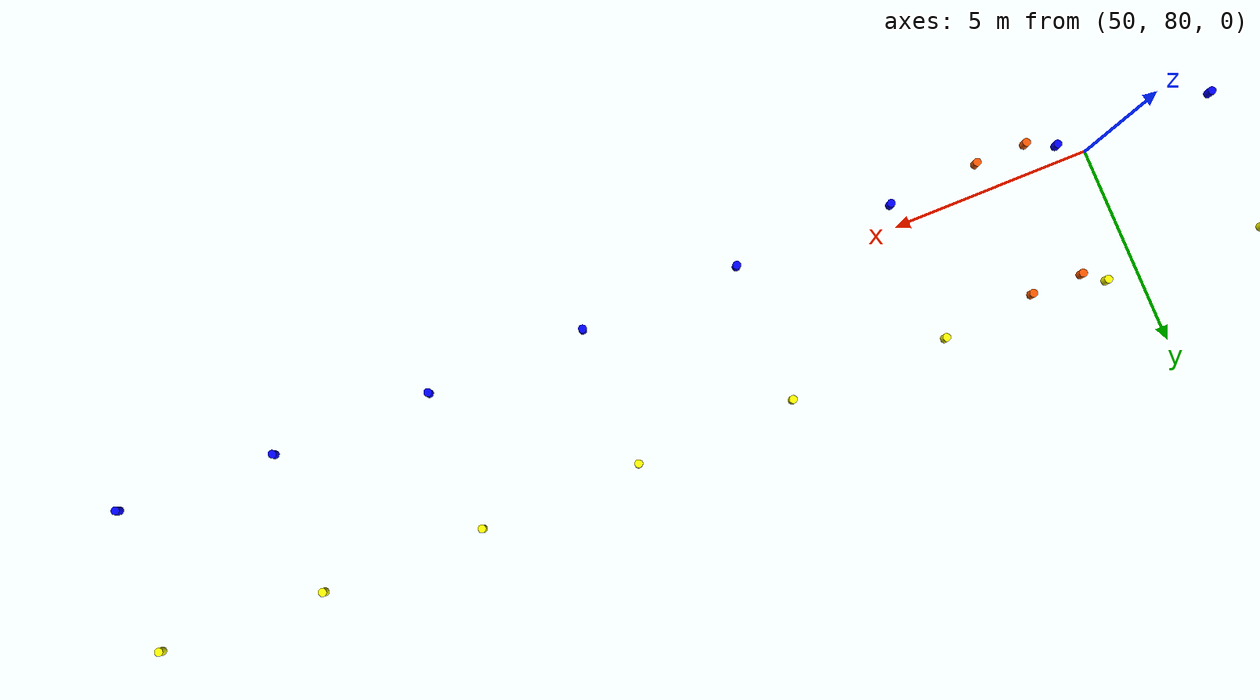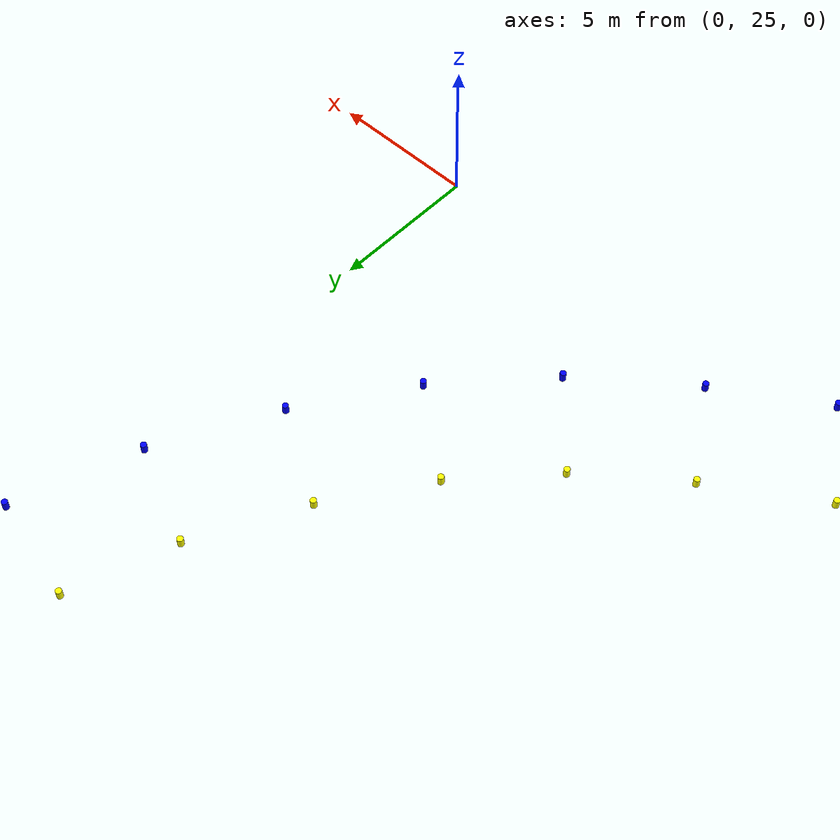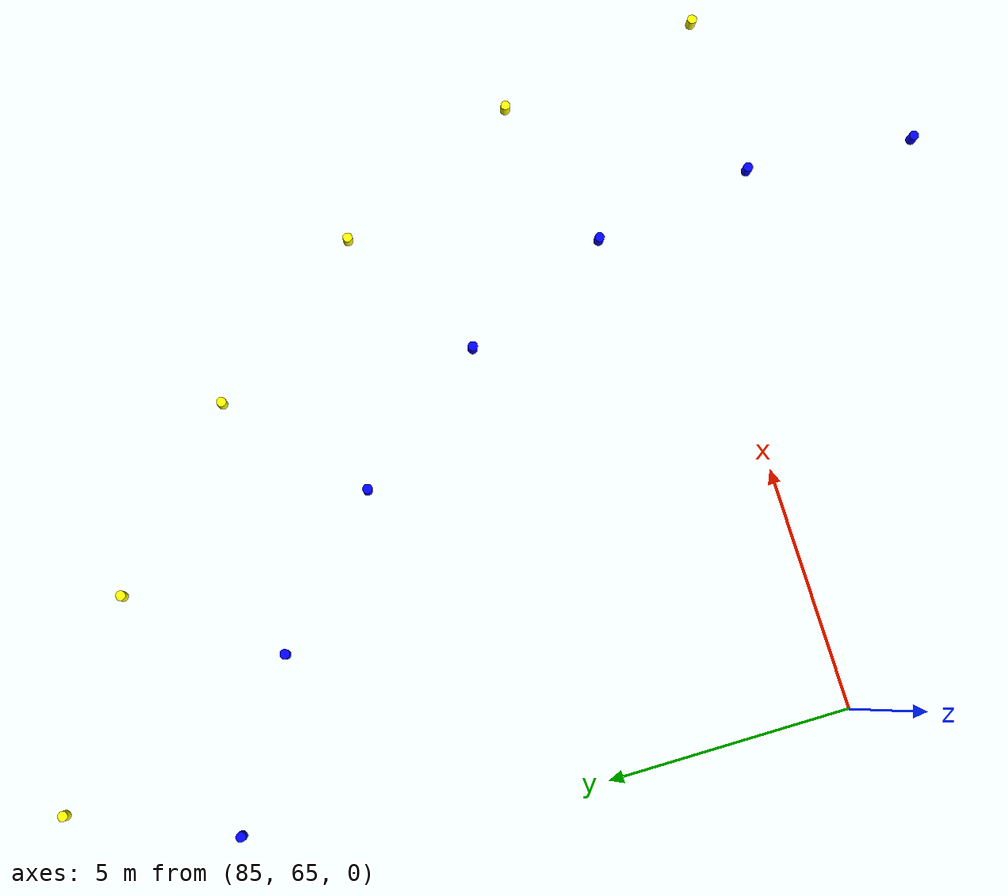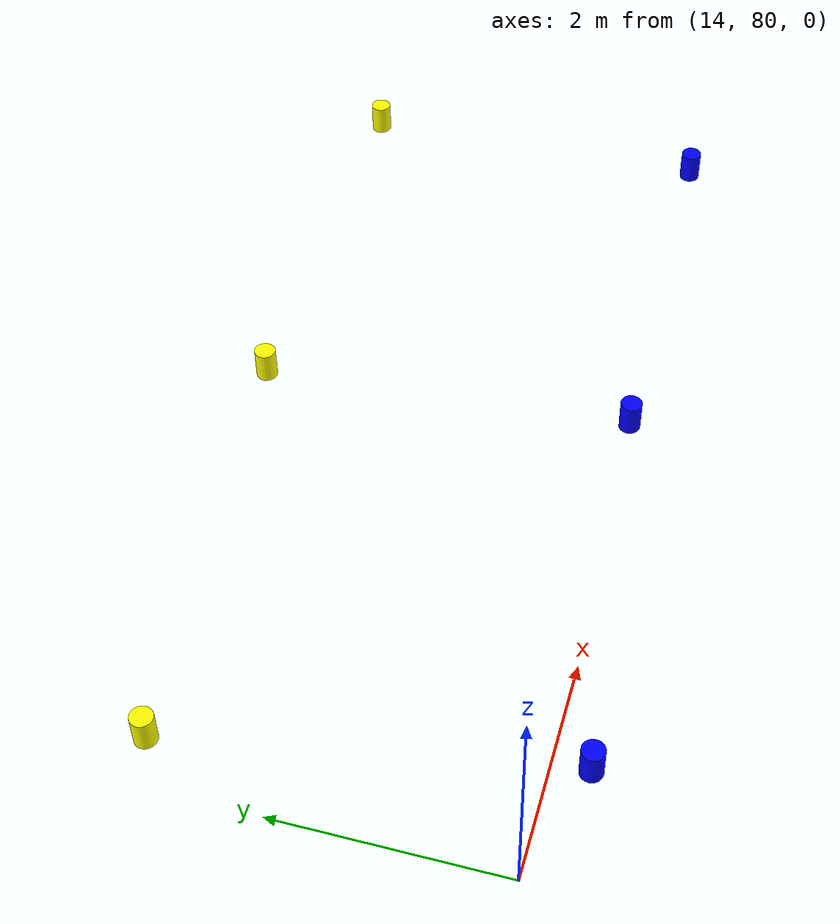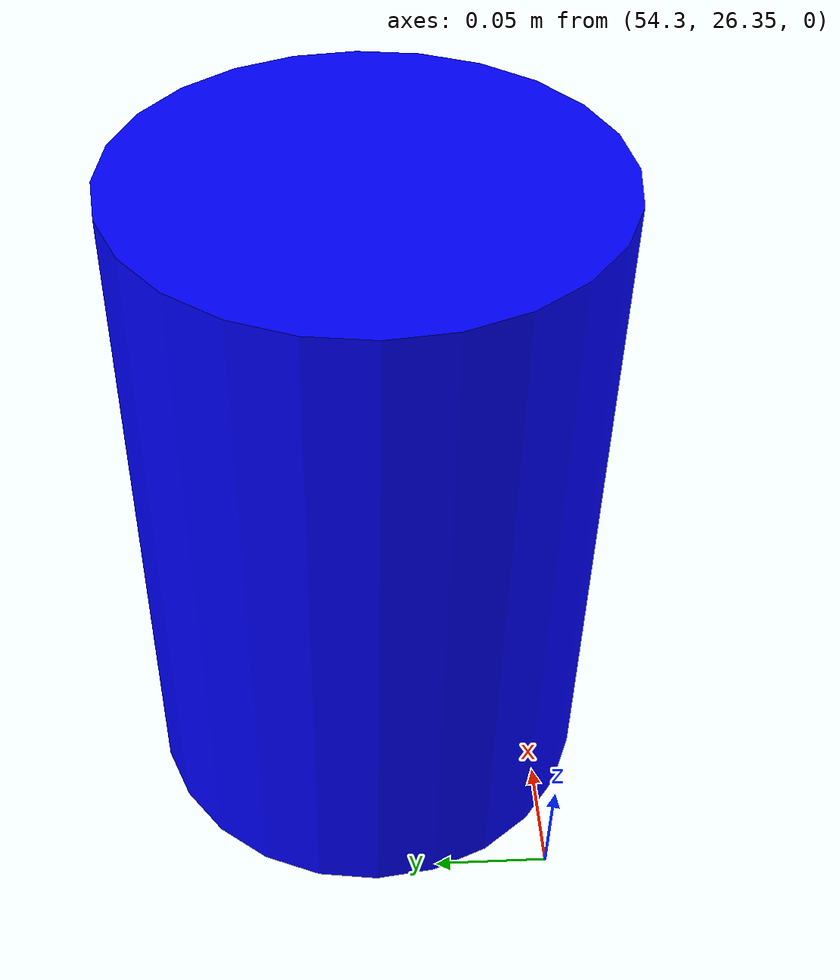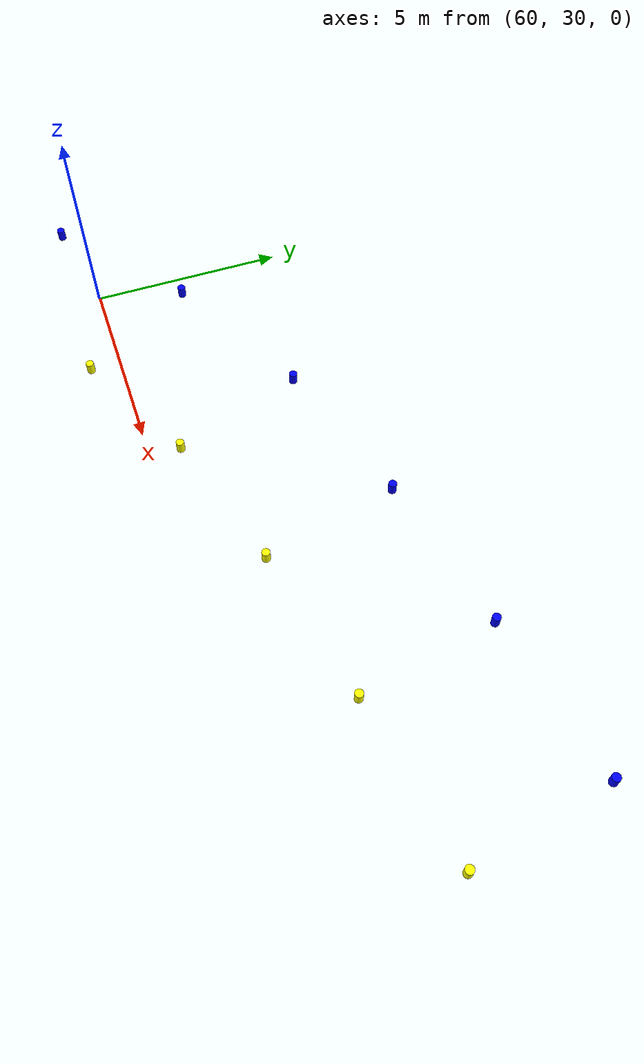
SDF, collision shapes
<?xml version="1.0"?>
<sdf version="1.7">
  <model name="track_competitionmap1">
    <static>true</static>

    <include>
      <uri>model://cone_yellow</uri>
      <name>cone_yellow_001</name>
      <pose>54.975 82.950 0.000 0 0 0.000</pose>
    </include>
    <include>
      <uri>model://cone_yellow</uri>
      <name>cone_yellow_002</name>
      <pose>58.953 82.943 0.000 0 0 0.000</pose>
    </include>
    <include>
      <uri>model://cone_yellow</uri>
      <name>cone_yellow_003</name>
      <pose>62.949 82.978 0.000 0 0 0.000</pose>
    </include>
    <include>
      <uri>model://cone_yellow</uri>
      <name>cone_yellow_004</name>
      <pose>66.966 83.012 0.000 0 0 0.000</pose>
    </include>
    <include>
      <uri>model://cone_yellow</uri>
      <name>cone_yellow_005</name>
      <pose>71.007 82.989 0.000 0 0 0.000</pose>
    </include>
    <include>
      <uri>model://cone_yellow</uri>
      <name>cone_yellow_006</name>
      <pose>75.078 82.841 0.000 0 0 0.000</pose>
    </include>
    <include>
      <uri>model://cone_yellow</uri>
      <name>cone_yellow_007</name>
      <pose>79.177 82.471 0.000 0 0 0.000</pose>
    </include>
    <include>
      <uri>model://cone_yellow</uri>
      <name>cone_yellow_008</name>
      <pose>83.287 81.739 0.000 0 0 0.000</pose>
    </include>
    <include>
      <uri>model://cone_yellow</uri>
      <name>cone_yellow_009</name>
      <pose>87.359 80.438 0.000 0 0 0.000</pose>
    </include>
    <include>
      <uri>model://cone_yellow</uri>
      <name>cone_yellow_010</name>
      <pose>91.196 78.326 0.000 0 0 0.000</pose>
    </include>
    <include>
      <uri>model://cone_yellow</uri>
      <name>cone_yellow_011</name>
      <pose>94.448 75.400 0.000 0 0 0.000</pose>
    </include>
    <include>
      <uri>model://cone_yellow</uri>
      <name>cone_yellow_012</name>
      <pose>97.095 71.988 0.000 0 0 0.000</pose>
    </include>
    <include>
      <uri>model://cone_yellow</uri>
      <name>cone_yellow_013</name>
      <pose>98.964 67.993 0.000 0 0 0.000</pose>
    </include>
    <include>
      <uri>model://cone_yellow</uri>
      <name>cone_yellow_014</name>
      <pose>99.716 63.592 0.000 0 0 0.000</pose>
    </include>
    <include>
      <uri>model://cone_yellow</uri>
      <name>cone_yellow_015</name>
      <pose>99.340 59.224 0.000 0 0 0.000</pose>
    </include>
    <include>
      <uri>model://cone_yellow</uri>
      <name>cone_yellow_016</name>
      <pose>98.289 55.231 0.000 0 0 0.000</pose>
    </include>
    <include>
      <uri>model://cone_yellow</uri>
      <name>cone_yellow_017</name>
      <pose>97.472 51.462 0.000 0 0 0.000</pose>
    </include>
    <include>
      <uri>model://cone_yellow</uri>
      <name>cone_yellow_018</name>
      <pose>96.601 47.428 0.000 0 0 0.000</pose>
    </include>
    <include>
      <uri>model://cone_yellow</uri>
      <name>cone_yellow_019</name>
      <pose>95.116 43.375 0.000 0 0 0.000</pose>
    </include>
    <include>
      <uri>model://cone_yellow</uri>
      <name>cone_yellow_020</name>
      <pose>92.922 39.679 0.000 0 0 0.000</pose>
    </include>
    <include>
      <uri>model://cone_yellow</uri>
      <name>cone_yellow_021</name>
      <pose>89.257 36.671 0.000 0 0 0.000</pose>
    </include>
    <include>
      <uri>model://cone_yellow</uri>
      <name>cone_yellow_022</name>
      <pose>85.186 35.088 0.000 0 0 0.000</pose>
    </include>
    <include>
      <uri>model://cone_yellow</uri>
      <name>cone_yellow_023</name>
      <pose>81.181 34.093 0.000 0 0 0.000</pose>
    </include>
    <include>
      <uri>model://cone_yellow</uri>
      <name>cone_yellow_024</name>
      <pose>77.193 33.323 0.000 0 0 0.000</pose>
    </include>
    <include>
      <uri>model://cone_yellow</uri>
      <name>cone_yellow_025</name>
      <pose>73.252 32.610 0.000 0 0 0.000</pose>
    </include>
    <include>
      <uri>model://cone_yellow</uri>
      <name>cone_yellow_026</name>
      <pose>69.396 31.817 0.000 0 0 0.000</pose>
    </include>
    <include>
      <uri>model://cone_yellow</uri>
      <name>cone_yellow_027</name>
      <pose>65.739 30.785 0.000 0 0 0.000</pose>
    </include>
    <include>
      <uri>model://cone_yellow</uri>
      <name>cone_yellow_028</name>
      <pose>62.504 29.240 0.000 0 0 0.000</pose>
    </include>
    <include>
      <uri>model://cone_yellow</uri>
      <name>cone_yellow_029</name>
      <pose>59.654 26.977 0.000 0 0 0.000</pose>
    </include>
    <include>
      <uri>model://cone_yellow</uri>
      <name>cone_yellow_030</name>
      <pose>57.071 24.172 0.000 0 0 0.000</pose>
    </include>
    <include>
      <uri>model://cone_yellow</uri>
      <name>cone_yellow_031</name>
      <pose>54.434 21.070 0.000 0 0 0.000</pose>
    </include>
    <include>
      <uri>model://cone_yellow</uri>
      <name>cone_yellow_032</name>
      <pose>51.048 18.152 0.000 0 0 0.000</pose>
    </include>
    <include>
      <uri>model://cone_yellow</uri>
      <name>cone_yellow_033</name>
      <pose>46.537 16.661 0.000 0 0 0.000</pose>
    </include>
    <include>
      <uri>model://cone_yellow</uri>
      <name>cone_yellow_034</name>
      <pose>42.208 16.699 0.000 0 0 0.000</pose>
    </include>
    <include>
      <uri>model://cone_yellow</uri>
      <name>cone_yellow_035</name>
      <pose>38.093 17.321 0.000 0 0 0.000</pose>
    </include>
    <include>
      <uri>model://cone_yellow</uri>
      <name>cone_yellow_036</name>
      <pose>34.158 18.118 0.000 0 0 0.000</pose>
    </include>
    <include>
      <uri>model://cone_yellow</uri>
      <name>cone_yellow_037</name>
      <pose>30.379 18.716 0.000 0 0 0.000</pose>
    </include>
    <include>
      <uri>model://cone_yellow</uri>
      <name>cone_yellow_038</name>
      <pose>26.890 18.631 0.000 0 0 0.000</pose>
    </include>
    <include>
      <uri>model://cone_yellow</uri>
      <name>cone_yellow_039</name>
      <pose>23.360 17.638 0.000 0 0 0.000</pose>
    </include>
    <include>
      <uri>model://cone_yellow</uri>
      <name>cone_yellow_040</name>
      <pose>20.268 15.944 0.000 0 0 0.000</pose>
    </include>
    <include>
      <uri>model://cone_yellow</uri>
      <name>cone_yellow_041</name>
      <pose>17.810 13.487 0.000 0 0 0.000</pose>
    </include>
    <include>
      <uri>model://cone_yellow</uri>
      <name>cone_yellow_042</name>
      <pose>16.048 10.355 0.000 0 0 0.000</pose>
    </include>
    <include>
      <uri>model://cone_yellow</uri>
      <name>cone_yellow_043</name>
      <pose>14.670 6.726 0.000 0 0 0.000</pose>
    </include>
    <include>
      <uri>model://cone_yellow</uri>
      <name>cone_yellow_044</name>
      <pose>13.044 2.821 0.000 0 0 0.000</pose>
    </include>
    <include>
      <uri>model://cone_yellow</uri>
      <name>cone_yellow_045</name>
      <pose>10.370 -0.835 0.000 0 0 0.000</pose>
    </include>
    <include>
      <uri>model://cone_yellow</uri>
      <name>cone_yellow_046</name>
      <pose>6.678 -3.430 0.000 0 0 0.000</pose>
    </include>
    <include>
      <uri>model://cone_yellow</uri>
      <name>cone_yellow_047</name>
      <pose>2.604 -4.978 0.000 0 0 0.000</pose>
    </include>
    <include>
      <uri>model://cone_yellow</uri>
      <name>cone_yellow_048</name>
      <pose>-1.677 -5.697 0.000 0 0 0.000</pose>
    </include>
    <include>
      <uri>model://cone_yellow</uri>
      <name>cone_yellow_049</name>
      <pose>-6.089 -5.472 0.000 0 0 0.000</pose>
    </include>
    <include>
      <uri>model://cone_yellow</uri>
      <name>cone_yellow_050</name>
      <pose>-10.382 -3.987 0.000 0 0 0.000</pose>
    </include>
    <include>
      <uri>model://cone_yellow</uri>
      <name>cone_yellow_051</name>
      <pose>-13.921 -1.082 0.000 0 0 0.000</pose>
    </include>
    <include>
      <uri>model://cone_yellow</uri>
      <name>cone_yellow_052</name>
      <pose>-16.498 2.325 0.000 0 0 0.000</pose>
    </include>
    <include>
      <uri>model://cone_yellow</uri>
      <name>cone_yellow_053</name>
      <pose>-18.503 6.100 0.000 0 0 0.000</pose>
    </include>
    <include>
      <uri>model://cone_yellow</uri>
      <name>cone_yellow_054</name>
      <pose>-19.882 10.145 0.000 0 0 0.000</pose>
    </include>
    <include>
      <uri>model://cone_yellow</uri>
      <name>cone_yellow_055</name>
      <pose>-20.607 14.353 0.000 0 0 0.000</pose>
    </include>
    <include>
      <uri>model://cone_yellow</uri>
      <name>cone_yellow_056</name>
      <pose>-20.666 18.620 0.000 0 0 0.000</pose>
    </include>
    <include>
      <uri>model://cone_yellow</uri>
      <name>cone_yellow_057</name>
      <pose>-19.678 23.187 0.000 0 0 0.000</pose>
    </include>
    <include>
      <uri>model://cone_yellow</uri>
      <name>cone_yellow_058</name>
      <pose>-16.426 26.706 0.000 0 0 0.000</pose>
    </include>
    <include>
      <uri>model://cone_yellow</uri>
      <name>cone_yellow_059</name>
      <pose>-13.051 28.883 0.000 0 0 0.000</pose>
    </include>
    <include>
      <uri>model://cone_yellow</uri>
      <name>cone_yellow_060</name>
      <pose>-10.088 31.195 0.000 0 0 0.000</pose>
    </include>
    <include>
      <uri>model://cone_yellow</uri>
      <name>cone_yellow_061</name>
      <pose>-7.606 33.893 0.000 0 0 0.000</pose>
    </include>
    <include>
      <uri>model://cone_yellow</uri>
      <name>cone_yellow_062</name>
      <pose>-5.500 36.993 0.000 0 0 0.000</pose>
    </include>
    <include>
      <uri>model://cone_yellow</uri>
      <name>cone_yellow_063</name>
      <pose>-3.688 40.475 0.000 0 0 0.000</pose>
    </include>
    <include>
      <uri>model://cone_yellow</uri>
      <name>cone_yellow_064</name>
      <pose>-2.505 43.907 0.000 0 0 0.000</pose>
    </include>
    <include>
      <uri>model://cone_yellow</uri>
      <name>cone_yellow_065</name>
      <pose>-2.054 47.485 0.000 0 0 0.000</pose>
    </include>
    <include>
      <uri>model://cone_yellow</uri>
      <name>cone_yellow_066</name>
      <pose>-2.388 51.117 0.000 0 0 0.000</pose>
    </include>
    <include>
      <uri>model://cone_yellow</uri>
      <name>cone_yellow_067</name>
      <pose>-3.332 54.806 0.000 0 0 0.000</pose>
    </include>
    <include>
      <uri>model://cone_yellow</uri>
      <name>cone_yellow_068</name>
      <pose>-4.503 58.673 0.000 0 0 0.000</pose>
    </include>
    <include>
      <uri>model://cone_yellow</uri>
      <name>cone_yellow_069</name>
      <pose>-5.287 62.932 0.000 0 0 0.000</pose>
    </include>
    <include>
      <uri>model://cone_yellow</uri>
      <name>cone_yellow_070</name>
      <pose>-4.850 67.431 0.000 0 0 0.000</pose>
    </include>
    <include>
      <uri>model://cone_yellow</uri>
      <name>cone_yellow_071</name>
      <pose>-3.005 71.490 0.000 0 0 0.000</pose>
    </include>
    <include>
      <uri>model://cone_yellow</uri>
      <name>cone_yellow_072</name>
      <pose>-0.267 74.999 0.000 0 0 0.000</pose>
    </include>
    <include>
      <uri>model://cone_yellow</uri>
      <name>cone_yellow_073</name>
      <pose>2.826 77.914 0.000 0 0 0.000</pose>
    </include>
    <include>
      <uri>model://cone_yellow</uri>
      <name>cone_yellow_074</name>
      <pose>6.369 80.299 0.000 0 0 0.000</pose>
    </include>
    <include>
      <uri>model://cone_yellow</uri>
      <name>cone_yellow_075</name>
      <pose>10.288 82.048 0.000 0 0 0.000</pose>
    </include>
    <include>
      <uri>model://cone_yellow</uri>
      <name>cone_yellow_076</name>
      <pose>14.421 83.128 0.000 0 0 0.000</pose>
    </include>
    <include>
      <uri>model://cone_yellow</uri>
      <name>cone_yellow_077</name>
      <pose>18.574 83.630 0.000 0 0 0.000</pose>
    </include>
    <include>
      <uri>model://cone_yellow</uri>
      <name>cone_yellow_078</name>
      <pose>22.693 83.758 0.000 0 0 0.000</pose>
    </include>
    <include>
      <uri>model://cone_yellow</uri>
      <name>cone_yellow_079</name>
      <pose>26.598 83.835 0.000 0 0 0.000</pose>
    </include>
    <include>
      <uri>model://cone_yellow</uri>
      <name>cone_yellow_080</name>
      <pose>30.682 83.833 0.000 0 0 0.000</pose>
    </include>
    <include>
      <uri>model://cone_yellow</uri>
      <name>cone_yellow_081</name>
      <pose>34.711 83.755 0.000 0 0 0.000</pose>
    </include>
    <include>
      <uri>model://cone_yellow</uri>
      <name>cone_yellow_082</name>
      <pose>38.740 83.636 0.000 0 0 0.000</pose>
    </include>
    <include>
      <uri>model://cone_yellow</uri>
      <name>cone_yellow_083</name>
      <pose>42.761 83.488 0.000 0 0 0.000</pose>
    </include>
    <include>
      <uri>model://cone_yellow</uri>
      <name>cone_yellow_084</name>
      <pose>46.798 83.315 0.000 0 0 0.000</pose>
    </include>
    <include>
      <uri>model://cone_yellow</uri>
      <name>cone_yellow_085</name>
      <pose>50.821 83.117 0.000 0 0 0.000</pose>
    </include>
    <include>
      <uri>model://cone_blue</uri>
      <name>cone_blue_001</name>
      <pose>54.939 79.450 0.000 0 0 0.000</pose>
    </include>
    <include>
      <uri>model://cone_blue</uri>
      <name>cone_blue_002</name>
      <pose>58.971 79.443 0.000 0 0 0.000</pose>
    </include>
    <include>
      <uri>model://cone_blue</uri>
      <name>cone_blue_003</name>
      <pose>62.986 79.479 0.000 0 0 0.000</pose>
    </include>
    <include>
      <uri>model://cone_blue</uri>
      <name>cone_blue_004</name>
      <pose>66.979 79.512 0.000 0 0 0.000</pose>
    </include>
    <include>
      <uri>model://cone_blue</uri>
      <name>cone_blue_005</name>
      <pose>70.945 79.490 0.000 0 0 0.000</pose>
    </include>
    <include>
      <uri>model://cone_blue</uri>
      <name>cone_blue_006</name>
      <pose>74.872 79.347 0.000 0 0 0.000</pose>
    </include>
    <include>
      <uri>model://cone_blue</uri>
      <name>cone_blue_007</name>
      <pose>78.735 78.999 0.000 0 0 0.000</pose>
    </include>
    <include>
      <uri>model://cone_blue</uri>
      <name>cone_blue_008</name>
      <pose>82.478 78.334 0.000 0 0 0.000</pose>
    </include>
    <include>
      <uri>model://cone_blue</uri>
      <name>cone_blue_009</name>
      <pose>86.013 77.207 0.000 0 0 0.000</pose>
    </include>
    <include>
      <uri>model://cone_blue</uri>
      <name>cone_blue_010</name>
      <pose>89.161 75.479 0.000 0 0 0.000</pose>
    </include>
    <include>
      <uri>model://cone_blue</uri>
      <name>cone_blue_011</name>
      <pose>91.888 73.013 0.000 0 0 0.000</pose>
    </include>
    <include>
      <uri>model://cone_blue</uri>
      <name>cone_blue_012</name>
      <pose>94.129 70.131 0.000 0 0 0.000</pose>
    </include>
    <include>
      <uri>model://cone_blue</uri>
      <name>cone_blue_013</name>
      <pose>95.629 66.933 0.000 0 0 0.000</pose>
    </include>
    <include>
      <uri>model://cone_blue</uri>
      <name>cone_blue_014</name>
      <pose>96.218 63.478 0.000 0 0 0.000</pose>
    </include>
    <include>
      <uri>model://cone_blue</uri>
      <name>cone_blue_015</name>
      <pose>95.905 59.891 0.000 0 0 0.000</pose>
    </include>
    <include>
      <uri>model://cone_blue</uri>
      <name>cone_blue_016</name>
      <pose>94.909 56.140 0.000 0 0 0.000</pose>
    </include>
    <include>
      <uri>model://cone_blue</uri>
      <name>cone_blue_017</name>
      <pose>94.033 52.112 0.000 0 0 0.000</pose>
    </include>
    <include>
      <uri>model://cone_blue</uri>
      <name>cone_blue_018</name>
      <pose>93.222 48.340 0.000 0 0 0.000</pose>
    </include>
    <include>
      <uri>model://cone_blue</uri>
      <name>cone_blue_019</name>
      <pose>91.957 44.882 0.000 0 0 0.000</pose>
    </include>
    <include>
      <uri>model://cone_blue</uri>
      <name>cone_blue_020</name>
      <pose>90.072 41.711 0.000 0 0 0.000</pose>
    </include>
    <include>
      <uri>model://cone_blue</uri>
      <name>cone_blue_021</name>
      <pose>87.644 39.777 0.000 0 0 0.000</pose>
    </include>
    <include>
      <uri>model://cone_blue</uri>
      <name>cone_blue_022</name>
      <pose>84.190 38.443 0.000 0 0 0.000</pose>
    </include>
    <include>
      <uri>model://cone_blue</uri>
      <name>cone_blue_023</name>
      <pose>80.455 37.517 0.000 0 0 0.000</pose>
    </include>
    <include>
      <uri>model://cone_blue</uri>
      <name>cone_blue_024</name>
      <pose>76.570 36.767 0.000 0 0 0.000</pose>
    </include>
    <include>
      <uri>model://cone_blue</uri>
      <name>cone_blue_025</name>
      <pose>72.609 36.050 0.000 0 0 0.000</pose>
    </include>
    <include>
      <uri>model://cone_blue</uri>
      <name>cone_blue_026</name>
      <pose>68.603 35.226 0.000 0 0 0.000</pose>
    </include>
    <include>
      <uri>model://cone_blue</uri>
      <name>cone_blue_027</name>
      <pose>64.582 34.089 0.000 0 0 0.000</pose>
    </include>
    <include>
      <uri>model://cone_blue</uri>
      <name>cone_blue_028</name>
      <pose>60.615 32.187 0.000 0 0 0.000</pose>
    </include>
    <include>
      <uri>model://cone_blue</uri>
      <name>cone_blue_029</name>
      <pose>57.237 29.509 0.000 0 0 0.000</pose>
    </include>
    <include>
      <uri>model://cone_blue</uri>
      <name>cone_blue_030</name>
      <pose>54.394 26.427 0.000 0 0 0.000</pose>
    </include>
    <include>
      <uri>model://cone_blue</uri>
      <name>cone_blue_031</name>
      <pose>51.850 23.431 0.000 0 0 0.000</pose>
    </include>
    <include>
      <uri>model://cone_blue</uri>
      <name>cone_blue_032</name>
      <pose>49.220 21.137 0.000 0 0 0.000</pose>
    </include>
    <include>
      <uri>model://cone_blue</uri>
      <name>cone_blue_033</name>
      <pose>46.204 20.145 0.000 0 0 0.000</pose>
    </include>
    <include>
      <uri>model://cone_blue</uri>
      <name>cone_blue_034</name>
      <pose>42.545 20.183 0.000 0 0 0.000</pose>
    </include>
    <include>
      <uri>model://cone_blue</uri>
      <name>cone_blue_035</name>
      <pose>38.752 20.759 0.000 0 0 0.000</pose>
    </include>
    <include>
      <uri>model://cone_blue</uri>
      <name>cone_blue_036</name>
      <pose>34.838 21.551 0.000 0 0 0.000</pose>
    </include>
    <include>
      <uri>model://cone_blue</uri>
      <name>cone_blue_037</name>
      <pose>30.712 22.200 0.000 0 0 0.000</pose>
    </include>
    <include>
      <uri>model://cone_blue</uri>
      <name>cone_blue_038</name>
      <pose>26.243 22.071 0.000 0 0 0.000</pose>
    </include>
    <include>
      <uri>model://cone_blue</uri>
      <name>cone_blue_039</name>
      <pose>22.075 20.893 0.000 0 0 0.000</pose>
    </include>
    <include>
      <uri>model://cone_blue</uri>
      <name>cone_blue_040</name>
      <pose>18.183 18.755 0.000 0 0 0.000</pose>
    </include>
    <include>
      <uri>model://cone_blue</uri>
      <name>cone_blue_041</name>
      <pose>15.004 15.579 0.000 0 0 0.000</pose>
    </include>
    <include>
      <uri>model://cone_blue</uri>
      <name>cone_blue_042</name>
      <pose>12.837 11.749 0.000 0 0 0.000</pose>
    </include>
    <include>
      <uri>model://cone_blue</uri>
      <name>cone_blue_043</name>
      <pose>11.376 7.908 0.000 0 0 0.000</pose>
    </include>
    <include>
      <uri>model://cone_blue</uri>
      <name>cone_blue_044</name>
      <pose>9.940 4.436 0.000 0 0 0.000</pose>
    </include>
    <include>
      <uri>model://cone_blue</uri>
      <name>cone_blue_045</name>
      <pose>7.927 1.671 0.000 0 0 0.000</pose>
    </include>
    <include>
      <uri>model://cone_blue</uri>
      <name>cone_blue_046</name>
      <pose>5.094 -0.309 0.000 0 0 0.000</pose>
    </include>
    <include>
      <uri>model://cone_blue</uri>
      <name>cone_blue_047</name>
      <pose>1.692 -1.599 0.000 0 0 0.000</pose>
    </include>
    <include>
      <uri>model://cone_blue</uri>
      <name>cone_blue_048</name>
      <pose>-1.907 -2.204 0.000 0 0 0.000</pose>
    </include>
    <include>
      <uri>model://cone_blue</uri>
      <name>cone_blue_049</name>
      <pose>-5.471 -2.027 0.000 0 0 0.000</pose>
    </include>
    <include>
      <uri>model://cone_blue</uri>
      <name>cone_blue_050</name>
      <pose>-8.698 -0.919 0.000 0 0 0.000</pose>
    </include>
    <include>
      <uri>model://cone_blue</uri>
      <name>cone_blue_051</name>
      <pose>-11.306 1.245 0.000 0 0 0.000</pose>
    </include>
    <include>
      <uri>model://cone_blue</uri>
      <name>cone_blue_052</name>
      <pose>-13.548 4.208 0.000 0 0 0.000</pose>
    </include>
    <include>
      <uri>model://cone_blue</uri>
      <name>cone_blue_053</name>
      <pose>-15.291 7.490 0.000 0 0 0.000</pose>
    </include>
    <include>
      <uri>model://cone_blue</uri>
      <name>cone_blue_054</name>
      <pose>-16.491 11.008 0.000 0 0 0.000</pose>
    </include>
    <include>
      <uri>model://cone_blue</uri>
      <name>cone_blue_055</name>
      <pose>-17.121 14.674 0.000 0 0 0.000</pose>
    </include>
    <include>
      <uri>model://cone_blue</uri>
      <name>cone_blue_056</name>
      <pose>-17.173 18.396 0.000 0 0 0.000</pose>
    </include>
    <include>
      <uri>model://cone_blue</uri>
      <name>cone_blue_057</name>
      <pose>-16.539 21.640 0.000 0 0 0.000</pose>
    </include>
    <include>
      <uri>model://cone_blue</uri>
      <name>cone_blue_058</name>
      <pose>-14.428 23.832 0.000 0 0 0.000</pose>
    </include>
    <include>
      <uri>model://cone_blue</uri>
      <name>cone_blue_059</name>
      <pose>-11.101 25.976 0.000 0 0 0.000</pose>
    </include>
    <include>
      <uri>model://cone_blue</uri>
      <name>cone_blue_060</name>
      <pose>-7.716 28.621 0.000 0 0 0.000</pose>
    </include>
    <include>
      <uri>model://cone_blue</uri>
      <name>cone_blue_061</name>
      <pose>-4.852 31.733 0.000 0 0 0.000</pose>
    </include>
    <include>
      <uri>model://cone_blue</uri>
      <name>cone_blue_062</name>
      <pose>-2.488 35.211 0.000 0 0 0.000</pose>
    </include>
    <include>
      <uri>model://cone_blue</uri>
      <name>cone_blue_063</name>
      <pose>-0.493 39.047 0.000 0 0 0.000</pose>
    </include>
    <include>
      <uri>model://cone_blue</uri>
      <name>cone_blue_064</name>
      <pose>0.899 43.092 0.000 0 0 0.000</pose>
    </include>
    <include>
      <uri>model://cone_blue</uri>
      <name>cone_blue_065</name>
      <pose>1.446 47.438 0.000 0 0 0.000</pose>
    </include>
    <include>
      <uri>model://cone_blue</uri>
      <name>cone_blue_066</name>
      <pose>1.052 51.764 0.000 0 0 0.000</pose>
    </include>
    <include>
      <uri>model://cone_blue</uri>
      <name>cone_blue_067</name>
      <pose>0.018 55.822 0.000 0 0 0.000</pose>
    </include>
    <include>
      <uri>model://cone_blue</uri>
      <name>cone_blue_068</name>
      <pose>-1.128 59.600 0.000 0 0 0.000</pose>
    </include>
    <include>
      <uri>model://cone_blue</uri>
      <name>cone_blue_069</name>
      <pose>-1.795 63.167 0.000 0 0 0.000</pose>
    </include>
    <include>
      <uri>model://cone_blue</uri>
      <name>cone_blue_070</name>
      <pose>-1.476 66.499 0.000 0 0 0.000</pose>
    </include>
    <include>
      <uri>model://cone_blue</uri>
      <name>cone_blue_071</name>
      <pose>-0.053 69.611 0.000 0 0 0.000</pose>
    </include>
    <include>
      <uri>model://cone_blue</uri>
      <name>cone_blue_072</name>
      <pose>2.319 72.640 0.000 0 0 0.000</pose>
    </include>
    <include>
      <uri>model://cone_blue</uri>
      <name>cone_blue_073</name>
      <pose>5.018 75.186 0.000 0 0 0.000</pose>
    </include>
    <include>
      <uri>model://cone_blue</uri>
      <name>cone_blue_074</name>
      <pose>8.067 77.238 0.000 0 0 0.000</pose>
    </include>
    <include>
      <uri>model://cone_blue</uri>
      <name>cone_blue_075</name>
      <pose>11.437 78.741 0.000 0 0 0.000</pose>
    </include>
    <include>
      <uri>model://cone_blue</uri>
      <name>cone_blue_076</name>
      <pose>15.053 79.685 0.000 0 0 0.000</pose>
    </include>
    <include>
      <uri>model://cone_blue</uri>
      <name>cone_blue_077</name>
      <pose>18.806 80.137 0.000 0 0 0.000</pose>
    </include>
    <include>
      <uri>model://cone_blue</uri>
      <name>cone_blue_078</name>
      <pose>22.725 80.259 0.000 0 0 0.000</pose>
    </include>
    <include>
      <uri>model://cone_blue</uri>
      <name>cone_blue_079</name>
      <pose>26.656 80.335 0.000 0 0 0.000</pose>
    </include>
    <include>
      <uri>model://cone_blue</uri>
      <name>cone_blue_080</name>
      <pose>30.639 80.334 0.000 0 0 0.000</pose>
    </include>
    <include>
      <uri>model://cone_blue</uri>
      <name>cone_blue_081</name>
      <pose>34.622 80.256 0.000 0 0 0.000</pose>
    </include>
    <include>
      <uri>model://cone_blue</uri>
      <name>cone_blue_082</name>
      <pose>38.623 80.138 0.000 0 0 0.000</pose>
    </include>
    <include>
      <uri>model://cone_blue</uri>
      <name>cone_blue_083</name>
      <pose>42.621 79.991 0.000 0 0 0.000</pose>
    </include>
    <include>
      <uri>model://cone_blue</uri>
      <name>cone_blue_084</name>
      <pose>46.638 79.819 0.000 0 0 0.000</pose>
    </include>
    <include>
      <uri>model://cone_blue</uri>
      <name>cone_blue_085</name>
      <pose>50.632 79.622 0.000 0 0 0.000</pose>
    </include>
    <include>
      <uri>model://cone_orange</uri>
      <name>cone_orange_001</name>
      <pose>51.323 79.300 0.000 0 0 0.000</pose>
    </include>
    <include>
      <uri>model://cone_orange</uri>
      <name>cone_orange_002</name>
      <pose>51.323 82.752 0.000 0 0 0.000</pose>
    </include>
    <include>
      <uri>model://cone_orange</uri>
      <name>cone_orange_003</name>
      <pose>52.623 82.752 0.000 0 0 0.000</pose>
    </include>
    <include>
      <uri>model://cone_orange</uri>
      <name>cone_orange_004</name>
      <pose>52.623 79.300 0.000 0 0 0.000</pose>
    </include>

  </model>
</sdf>

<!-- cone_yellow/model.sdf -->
<sdf version="1.6">
  <model name="cone_yellow">
    <static>1</static>
    <link name="link">

      <visual name="visual">
        <pose>0 0 0 0 0 0</pose>
        <geometry>
          <mesh>
            <uri>model://cone_yellow/meshes/cone.stl</uri>
            <scale>0.005 0.005 0.005</scale>
          </mesh>
        </geometry>
        <material>
          <ambient>1.0 1.0 0.0 1</ambient>
          <diffuse>1.0 1.0 0.0 1</diffuse>
        </material>
      </visual>

      <collision name="collision">
        <pose>0 0 0.15 0 0 0</pose>
        <geometry>
          <cylinder>
            <radius>0.1</radius>
            <length>0.3</length>
          </cylinder>
        </geometry>
        <surface>
          <friction>
            <ode>
              <mu>0.9</mu> <mu2>0.9</mu2> </ode>
          </friction>
        </surface>
      </collision>

      <inertial>
        <pose>0 0 0.05 0 0 0</pose>
        <mass>1</mass>
        <inertia>
          <ixx>0.01</ixx> <iyy>0.01</iyy> <izz>0.005</izz>
          <ixy>0.0</ixy> <ixz>0.0</ixz> <iyz>0.0</iyz>
        </inertia>
      </inertial>

    </link>
  </model>
</sdf>

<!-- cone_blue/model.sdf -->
<sdf version="1.6">
  <model name="cone_blue">
    <static>1</static>
    <link name="link">

      <inertial>
        <pose>0 0 0.05 0 0 0</pose> <mass>1</mass>
        <inertia>
          <ixx>0.01</ixx> <iyy>0.01</iyy> <izz>0.005</izz>
          <ixy>0.0</ixy> <ixz>0.0</ixz> <iyz>0.0</iyz>
        </inertia>
      </inertial>

      <collision name="collision">
        <pose>0 0 0.15 0 0 0</pose>
        <geometry>
          <cylinder>
            <radius>0.1</radius>
            <length>0.3</length>
          </cylinder>
        </geometry>
      </collision>

      <visual name="visual">
        <pose>0 0 0 0 0 0</pose>
        <geometry>
          <mesh>
            <uri>model://cone_blue/meshes/cone.stl</uri>
            <scale>0.005 0.005 0.005</scale>
          </mesh>
        </geometry>
        <material>
          <ambient>0.0 0.0 1.0 1</ambient>
          <diffuse>0.0 0.0 1.0 1</diffuse>
        </material>
      </visual>

    </link>
  </model>
</sdf>

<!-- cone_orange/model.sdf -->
<sdf version="1.6">
  <model name="cone_orange">
    <static>1</static>
    <link name="link">

      <visual name="visual">
        <pose>0 0 0 0 0 0</pose>
        <geometry>
          <mesh>
            <uri>model://cone_orange/meshes/cone.stl</uri>
            <scale>0.005 0.005 0.005</scale>
          </mesh>
        </geometry>
        <material>
          <ambient>1.0 0.35 0.0 1</ambient>
          <diffuse>1.0 0.35 0.0 1</diffuse>
        </material>
      </visual>

      <collision name="collision">
        <pose>0 0 0.15 0 0 0</pose>
        <geometry>
          <cylinder>
            <radius>0.1</radius>
            <length>0.3</length>
          </cylinder>
        </geometry>
        <surface>
          <friction>
            <ode>
              <mu>0.9</mu> <mu2>0.9</mu2>
            </ode>
          </friction>
        </surface>
      </collision>

      <inertial>
        <pose>0 0 0.05 0 0 0</pose> <mass>1.0</mass>
        <inertia>
          <ixx>0.01</ixx> <iyy>0.01</iyy> <izz>0.005</izz>
          <ixy>0.0</ixy> <ixz>0.0</ixz> <iyz>0.0</iyz>
        </inertia>
      </inertial>

    </link>
  </model>
</sdf>
